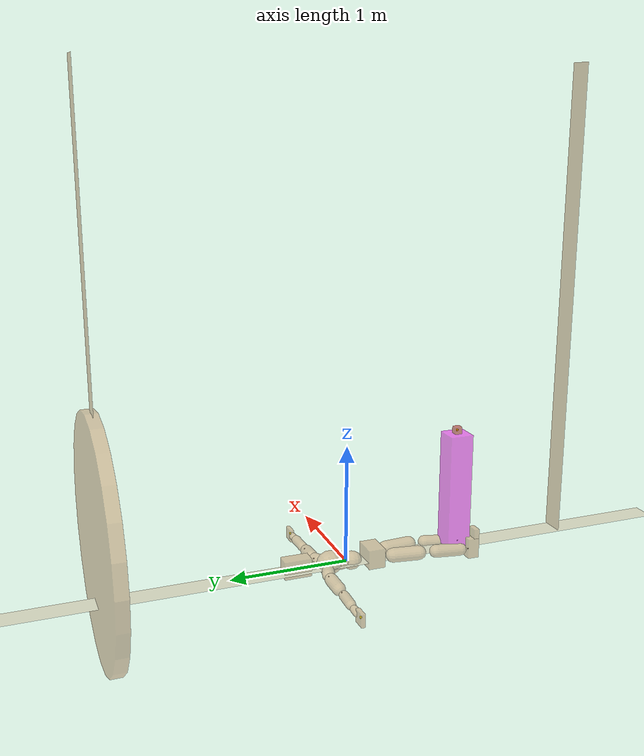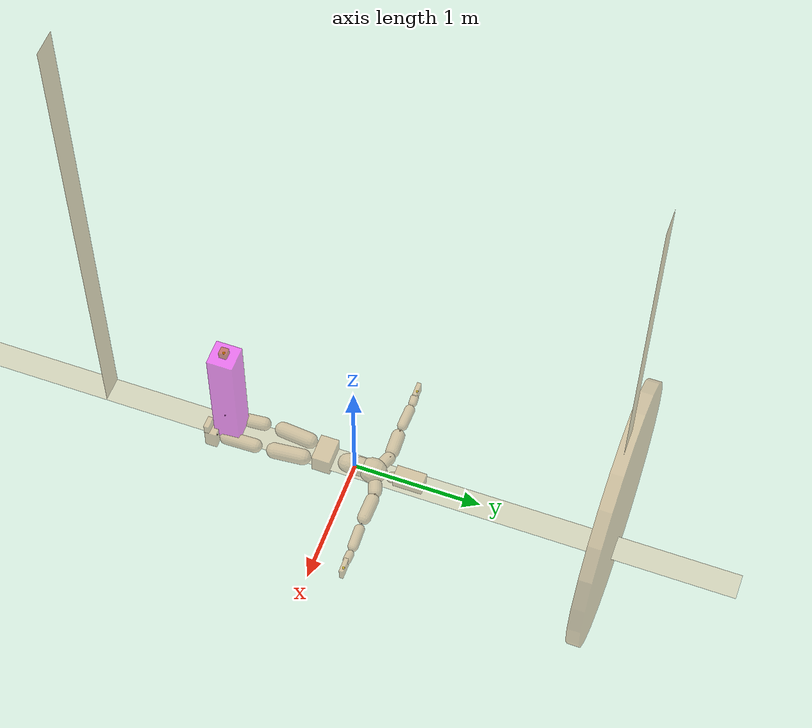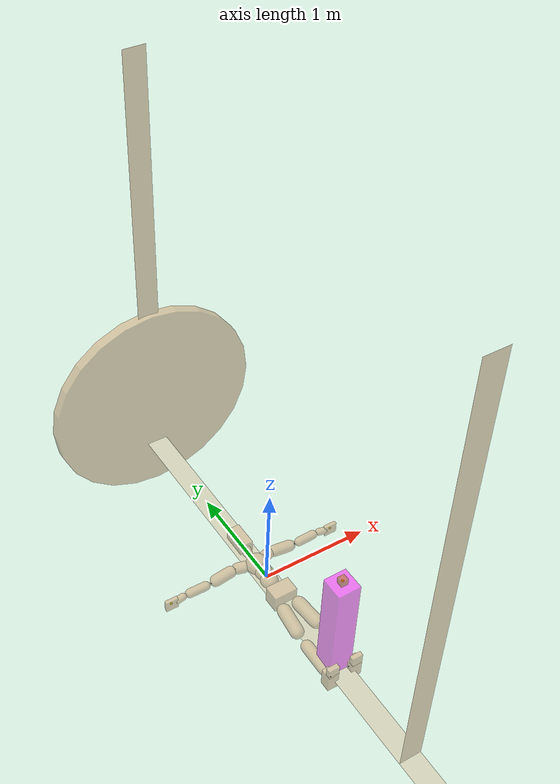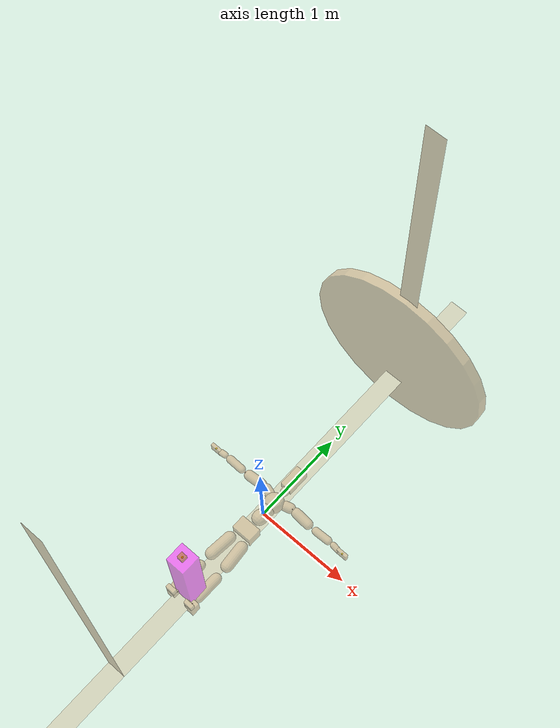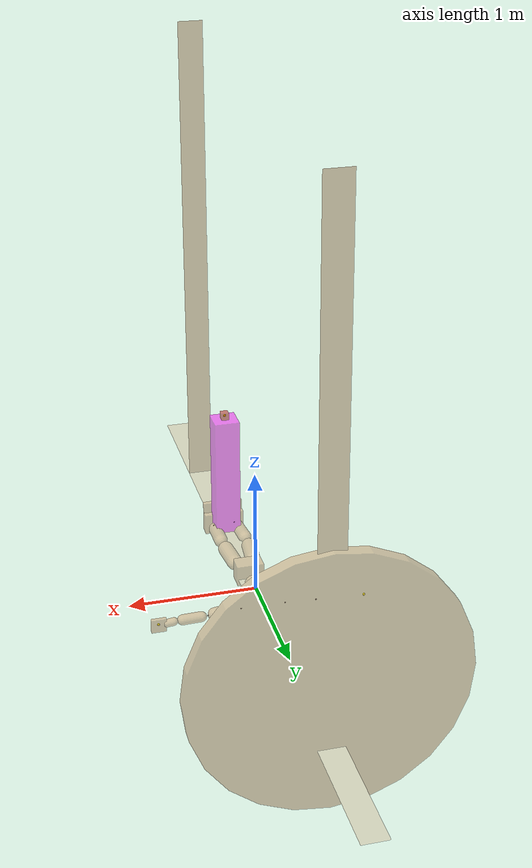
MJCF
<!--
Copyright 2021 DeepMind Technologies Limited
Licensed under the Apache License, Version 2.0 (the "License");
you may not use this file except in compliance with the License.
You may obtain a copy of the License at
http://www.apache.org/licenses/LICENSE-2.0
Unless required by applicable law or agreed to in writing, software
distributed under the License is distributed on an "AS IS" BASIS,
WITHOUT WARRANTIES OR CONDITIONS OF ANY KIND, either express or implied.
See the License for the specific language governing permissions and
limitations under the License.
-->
<!--timestep="0.00125"-->
<mujoco model="Humanoid">
  <option timestep="0.0005" integrator="implicitfast">
    <flag warmstart="disable"/>
  </option>
      <!-- geoms -->
  <default>
    <geom solimp="0.1 0.99 0.001" solref="0.005 1"/>
  </default>
  <include file="smpl_humanoid_soft_joint_limits.xml"/>
  <include file="baseball_pitch_scene.xml"/>
  <contact>
    <pair geom1="R_Hand_core" geom2="ball_core" friction="2 2 .01 .0002 .0002" solimp="0.9 0.99 0.0005" solref="0.001 1" margin=".06" gap=".06"/>
  </contact>
  <visual>
    <map force="0.1" zfar="30"/>
    <rgba haze="0.15 0.25 0.35 1"/>
      <!--offwidth="2560" offheight="1440"-->
    <global
      elevation="20"
      azimuth="10"
      />
    <headlight ambient=".8 .8 .8" specular=".8 .8 .8"/>
  </visual>
  <keyframe>
    <key name="tpose1" qpos="
        0.0 -.35  0.94 0.5  0.5  0.5  0.5  0.0  0.0  0.0
        0.0  0.0  0.0  0.0  0.0  0.0  0.0  0.0  0.0  0.0
        0.0  0.0  0.0  0.0  0.0  0.0  0.0  0.0  0.0  0.0
        0.0  0.0  0.0  0.0  0.0  0.0  0.0  0.0  0.0  0.0
        0.0  0.0  0.0  0.0  0.0  0.0  0.0  0.0  0.0  0.0
        0.0  0.0  0.0  0.0  0.0  0.0  0.0  0.0  0.0  0.0
        0.0  0.0  0.0  0.0  0.0  0.0  0.0  0.0  0.0  0.0
        0.0  0.0  0.0  0.0  0.0  0.0  0.0 -1.0  1.03 0.0
        0.0  0.0  0.0"/>
  </keyframe>
</mujoco>

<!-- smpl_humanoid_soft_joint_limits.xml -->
<mujoco model="humanoid">
  <compiler coordinate="local"/>
  <default class="main">
    <joint damping="10" armature="0.01" stiffness="0.0" margin=".3" limited="true" range="-120.0000 120.0000" solimplimit="0 0.95 1 0.5 1.5"/>
    <geom conaffinity="1" condim="3" contype="7" rgba="0.8 0.6 .4 .5" solimp="0.5 0.99 0.001" solref="0.005 1"/>
    <default class="wrist">
      <joint armature="0.01" stiffness="0" damping="0" />
      </default>
    <default class="thorax">
      <joint stiffness="2" damping="2" margin="1" range="-120.0000 120.0000" solimplimit="0 0.95 1 0.5 1.5"/>
    </default>
    <default class="shoulder">
      <joint stiffness="2" damping="2" margin="1" range="-120.0000 120.0000" solimplimit="0 0.95 1 0.5 1.5"/>
    </default>
    <default class="hand">
      <geom type="box" density="400" quat="1 0 0 0"/>
    </default>
  </default>
  <asset>
    <texture type="skybox" builtin="gradient" rgb1=".4 .5 .6" rgb2="0 0 0" width="100" height="100"/>
    <texture builtin="flat" height="1278" mark="cross" markrgb="1 1 1" name="texgeom" random="0.01" rgb1="0.8 0.6 0.4" rgb2="0.8 0.6 0.4" type="cube" width="127"/>
    <texture builtin="checker" height="100" name="texplane" rgb1="0 0 0" rgb2="0.8 0.8 0.8" type="2d" width="100"/>
    <material name="MatPlane" reflectance="0.5" shininess="1" specular="1" texrepeat="60 60" texture="texplane"/>
    <material name="geom" texture="texgeom" texuniform="true"/>
  </asset>
  <worldbody>
    <light cutoff="100" diffuse="1 1 1" dir="-0 0 -1.3" directional="true" exponent="1" pos="0 0 1.3" specular=".1 .1 .1"/>
    <body name="Pelvis" pos="-0.0018 -0.2233 0.0282">
      <freejoint name="Pelvis"/>
      <geom type="box" density="3165.830095" pos="-0.0000 -0.0121 -0.0055" size="0.1069 0.0722 0.083" quat="1.0000 0.0000 0.0000 0.0000" name="Pelvis"/>
      <body name="L_Hip" pos="0.0695 -0.0914 -0.0068">
        <joint name="L_Hip_x" type="hinge" pos="0 0 0" axis="1 0 0" user="250 2.5 1 500 10 2" armature="0.01" stiffness="0"/>
        <joint name="L_Hip_y" type="hinge" pos="0 0 0" axis="0 1 0" user="250 2.5 1 500 10 2" armature="0.01" stiffness="0"/>
        <joint name="L_Hip_z" type="hinge" pos="0 0 0" axis="0 0 1" user="250 2.5 1 500 10 2" armature="0.01" stiffness="0"/>
        <geom type="capsule" contype="1" conaffinity="1" density="2040.816327" fromto="0.0069 -0.0750 -0.0009 0.0274 -0.3002 -0.0036" size="0.0615" name="L_Hip"/>
        <body name="L_Knee" pos="0.0343 -0.3752 -0.0045">
          <joint name="L_Knee_x" type="hinge" pos="0 0 0" axis="1 0 0" user="250 2.5 1 500 10 2" armature="0.01" stiffness="0"/>
          <joint name="L_Knee_y" type="hinge" pos="0 0 0" axis="0 1 0" user="250 2.5 1 500 10 2" armature="0.01" stiffness="0"/>
          <joint name="L_Knee_z" type="hinge" pos="0 0 0" axis="0 0 1" user="250 2.5 1 500 10 2" armature="0.01" stiffness="0"/>
          <geom type="capsule" contype="1" conaffinity="1" density="1234.567901" fromto="-0.0027 -0.0796 -0.0087 -0.0109 -0.3184 -0.0350" size="0.0541" name="L_Knee"/>
          <body name="L_Ankle" pos="-0.0136 -0.398 -0.0437">
            <site name="L_Ankle" pos="0 0 0"/>
            <joint name="L_Ankle_x" type="hinge" pos="0 0 0" axis="1 0 0" user="150 2.5 1 500 10 2" armature="0.01" stiffness="0"/>
            <joint name="L_Ankle_y" type="hinge" pos="0 0 0" axis="0 1 0" user="150 2.5 1 500 10 2" armature="0.01" stiffness="0"/>
            <joint name="L_Ankle_z" type="hinge" pos="0 0 0" axis="0 0 1" user="150 2.5 1 500 10 2" armature="0.01" stiffness="0"/>
            <geom type="box" density="449.071569" pos="0.0233 -0.0239 0.0242" size="0.0483 0.0464 0.085" quat="1.0000 0.0000 0.0000 0.0000" name="L_Ankle"/>
            <body name="L_Toe" pos="0.0264 -0.0558 0.1193">
              <joint name="L_Toe_x" type="hinge" pos="0 0 0" axis="1 0 0" user="150 1 1 500 1 1" armature="0.01" stiffness="0"/>
              <joint name="L_Toe_y" type="hinge" pos="0 0 0" axis="0 1 0" user="150 1 1 500 1 1" armature="0.01" stiffness="0"/>
              <joint name="L_Toe_z" type="hinge" pos="0 0 0" axis="0 0 1" user="150 1 1 500 1 1" armature="0.01" stiffness="0"/>
              <geom type="box" density="423.206892" pos="-0.0030 0.0055 0.0248" size="0.0478 0.02 0.0496" quat="1.0000 0.0000 0.0000 0.0000" name="L_Toe"/>
            </body>
          </body>
        </body>
      </body>
      <body name="R_Hip" pos="-0.0677 -0.0905 -0.0043">
        <joint name="R_Hip_x" type="hinge" pos="0 0 0" axis="1 0 0" user="250 2.5 1 500 10 2" armature="0.01" stiffness="0"/>
        <joint name="R_Hip_y" type="hinge" pos="0 0 0" axis="0 1 0" user="250 2.5 1 500 10 2" armature="0.01" stiffness="0"/>
        <joint name="R_Hip_z" type="hinge" pos="0 0 0" axis="0 0 1" user="250 2.5 1 500 10 2" armature="0.01" stiffness="0"/>
        <geom type="capsule" contype="1" conaffinity="1" density="2040.816327" fromto="-0.0077 -0.0765 -0.0018 -0.0306 -0.3061 -0.0071" size="0.0606" name="R_Hip"/>
        <body name="R_Knee" pos="-0.0383 -0.3826 -0.0089">
          <joint name="R_Knee_x" type="hinge" pos="0 0 0" axis="1 0 0" user="250 2.5 1 500 10 2" armature="0.01" stiffness="0"/>
          <joint name="R_Knee_y" type="hinge" pos="0 0 0" axis="0 1 0" user="250 2.5 1 500 10 2" armature="0.01" stiffness="0"/>
          <joint name="R_Knee_z" type="hinge" pos="0 0 0" axis="0 0 1" user="250 2.5 1 500 10 2" armature="0.01" stiffness="0"/>
          <geom type="capsule" contype="1" conaffinity="1" density="1234.567901" fromto="0.0032 -0.0797 -0.0085 0.0126 -0.3187 -0.0338" size="0.0541" name="R_Knee"/>
          <body name="R_Ankle" pos="0.0158 -0.3984 -0.0423">
            <site name="R_Ankle" pos="0 0 0"/>
            <joint name="R_Ankle_x" type="hinge" pos="0 0 0" axis="1 0 0" user="150 1 1 500 10 2" armature="0.01" stiffness="0"/>
            <joint name="R_Ankle_y" type="hinge" pos="0 0 0" axis="0 1 0" user="150 1 1 500 10 2" armature="0.01" stiffness="0"/>
            <joint name="R_Ankle_z" type="hinge" pos="0 0 0" axis="0 0 1" user="150 1 1 500 10 2" armature="0.01" stiffness="0"/>
            <geom type="box" density="434.700981" pos="-0.0212 -0.0174 0.0256" size="0.0483 0.0478 0.0865" quat="1.0000 0.0000 0.0000 0.0000" name="R_Ankle"/>
            <body name="R_Toe" pos="-0.0254 -0.0481 0.1233">
              <joint name="R_Toe_x" type="hinge" pos="0 0 0" axis="1 0 0" user="150 1 1 500 1 1" armature="0.01" stiffness="0"/>
              <joint name="R_Toe_y" type="hinge" pos="0 0 0" axis="0 1 0" user="150 1 1 500 1 1" armature="0.01" stiffness="0"/>
              <joint name="R_Toe_z" type="hinge" pos="0 0 0" axis="0 0 1" user="150 1 1 500 1 1" armature="0.01" stiffness="0"/>
              <geom type="box" density="407.384095" pos="0.0042 0.0045 0.0227" size="0.0479 0.0216 0.0493" quat="1.0000 0.0000 0.0000 0.0000" name="R_Toe"/>
            </body>
          </body>
        </body>
      </body>
      <body name="Torso" pos="-0.0025 0.109 -0.0267">
        <joint name="Torso_x" type="hinge" pos="0 0 0" axis="1 0 0" user="500 5 1 500 10 2" armature="0.01" stiffness="0"/>
        <joint name="Torso_y" type="hinge" pos="0 0 0" axis="0 1 0" user="500 5 1 500 10 2" armature="0.01" stiffness="0"/>
        <joint name="Torso_z" type="hinge" pos="0 0 0" axis="0 0 1" user="500 5 1 500 10 2" armature="0.01" stiffness="0"/>
        <geom type="capsule" contype="1" conaffinity="1" density="2040.816327" fromto="0.0025 0.0608 0.0005 0.0030 0.0743 0.0006" size="0.0769" name="Torso"/>
        <body name="Spine" pos="0.0055 0.1352 0.0011">
          <joint name="Spine_x" type="hinge" pos="0 0 0" axis="1 0 0" user="500 5 1 500 10 2" armature="0.01" stiffness="0"/>
          <joint name="Spine_y" type="hinge" pos="0 0 0" axis="0 1 0" user="500 5 1 500 10 2" armature="0.01" stiffness="0"/>
          <joint name="Spine_z" type="hinge" pos="0 0 0" axis="0 0 1" user="500 5 1 500 10 2" armature="0.01" stiffness="0"/>
          <geom type="capsule" contype="1" conaffinity="1" density="2040.816327" fromto="0.0007 0.0238 0.0114 0.0008 0.0291 0.0140" size="0.0755" name="Spine"/>
          <body name="Chest" pos="0.0015 0.0529 0.0254">
            <joint name="Chest_x" type="hinge" pos="0 0 0" axis="1 0 0" user="500 5 1 500 10 2" armature="0.01" stiffness="0"/>
            <joint name="Chest_y" type="hinge" pos="0 0 0" axis="0 1 0" user="500 5 1 500 10 2" armature="0.01" stiffness="0"/>
            <joint name="Chest_z" type="hinge" pos="0 0 0" axis="0 0 1" user="500 5 1 500 10 2" armature="0.01" stiffness="0"/>
            <geom type="capsule" contype="1" conaffinity="1" density="2040.816327" fromto="-0.0009 0.0682 -0.0173 -0.0010 0.0833 -0.0212" size="0.1002" name="Chest"/>
            <body name="Neck" pos="-0.0028 0.2139 -0.0429">
              <joint name="Neck_x" type="hinge" pos="0 0 0" axis="1 0 0" user="150 1 1 250 50 4" armature="0.01" stiffness="0"/>
              <joint name="Neck_y" type="hinge" pos="0 0 0" axis="0 1 0" user="150 1 1 250 50 4" armature="0.01" stiffness="0"/>
              <joint name="Neck_z" type="hinge" pos="0 0 0" axis="0 0 1" user="150 1 1 250 50 4" armature="0.01" stiffness="0"/>
              <geom type="capsule" contype="1" conaffinity="1" density="1000" fromto="0.0010 0.0130 0.0103 0.0041 0.0520 0.0411" size="0.0436" name="Neck"/>
              <body name="Head" pos="0.0052 0.065 0.0513">
                <joint name="Head_x" type="hinge" pos="0 0 0" axis="1 0 0" user="150 1 1 250 50 4" armature="0.01" stiffness="0"/>
                <joint name="Head_y" type="hinge" pos="0 0 0" axis="0 1 0" user="150 1 1 250 50 4" armature="0.01" stiffness="0"/>
                <joint name="Head_z" type="hinge" pos="0 0 0" axis="0 0 1" user="150 1 1 250 50 4" armature="0.01" stiffness="0"/>
                <geom type="box" density="1018.069894" pos="-0.0042 0.0876 -0.0116" size="0.0606 0.1154 0.076" quat="1.0000 0.0000 0.0000 0.0000" name="Head"/>
              </body>
            </body>
            <body name="L_Thorax" pos="0.0788 0.1217 -0.0341">
              <joint class="thorax" name="L_Thorax_x" type="hinge" pos="0 0 0" axis="1 0 0" user="200 2 1 500 50 4" armature="0.01" range="-180.0000 180.0000"/>
              <joint class="thorax" name="L_Thorax_y" type="hinge" pos="0 0 0" axis="0 1 0" user="200 2 1 500 50 4" armature="0.01" range="-180.0000 180.0000"/>
              <joint class="thorax" name="L_Thorax_z" type="hinge" pos="0 0 0" axis="0 0 1" user="200 2 1 500 50 4" armature="0.01" range="-180.0000 180.0000"/>
              <geom type="capsule" contype="1" conaffinity="1" density="1000" fromto="0.0182 0.0061 -0.0018 0.0728 0.0244 -0.0071" size="0.0521" name="L_Thorax"/>
              <body name="L_Shoulder" pos="0.091 0.0305 -0.0089">
                <site name="L_Shoulder" pos="0 0 0"/>
                <joint class="shoulder" name="L_Shoulder_x" type="hinge" pos="0 0 0" axis="1 0 0" user="200 2 1 500 50 4" armature="0.01"/>
                <joint class="shoulder" name="L_Shoulder_y" type="hinge" pos="0 0 0" axis="0 1 0" user="200 2 1 500 50 4" armature="0.01"/>
                <joint class="shoulder" name="L_Shoulder_z" type="hinge" pos="0 0 0" axis="0 0 1" user="200 2 1 500 50 4" armature="0.01"/>
                <geom type="capsule" contype="1" conaffinity="1" density="1000" fromto="0.0519 -0.0026 -0.0055 0.2077 -0.0102 -0.0220" size="0.0517" name="L_Shoulder"/>
                <body name="L_Elbow" pos="0.2596 -0.0128 -0.0275">
                  <site name="L_Elbow" pos="0 0 0"/>
                  <joint name="L_Elbow_x" type="hinge" pos="0 0 0" axis="1 0 0" user="150 1 1 150 10 2" armature="0.01" range="-720.0000 720.0000" stiffness="0"/>
                  <joint name="L_Elbow_y" type="hinge" pos="0 0 0" axis="0 1 0" user="150 1 1 150 10 2" armature="0.01" range="-720.0000 720.0000" stiffness="0"/>
                  <joint name="L_Elbow_z" type="hinge" pos="0 0 0" axis="0 0 1" user="150 1 1 150 10 2" armature="0.01" range="-720.0000 720.0000" stiffness="0"/>
                  <geom type="capsule" contype="1" conaffinity="1" density="1000" fromto="0.0498 0.0018 -0.0002 0.1994 0.0072 -0.0009" size="0.0405" name="L_Elbow"/>
                  <body name="L_Wrist" pos="0.2492 0.009 -0.0012">
                    <joint name="L_Wrist_x" type="hinge" pos="0 0 0" axis="1 0 0" user="100 1 1 150 1 1" armature="0.01" stiffness="0"/>
                    <joint name="L_Wrist_y" type="hinge" pos="0 0 0" axis="0 1 0" user="100 1 1 150 1 1" armature="0.01" stiffness="0"/>
                    <joint name="L_Wrist_z" type="hinge" pos="0 0 0" axis="0 0 1" user="100 1 1 150 1 1" armature="0.01" stiffness="0"/>
                    <geom type="capsule" contype="1" conaffinity="1" density="1000" fromto="0.0168 -0.0016 -0.0030 0.0672 -0.0065 -0.0120" size="0.0318" name="L_Wrist"/>
                    <body name="L_Hand" pos="0.084 -0.0082 -0.0149">
                      <site name="L_Hand" pos=".05 0 0" rgba="1 1 0 .5" size=".01"/>
                      <joint name="L_Hand_x" type="hinge" pos="0 0 0" axis="1 0 0" user="50 1 1 150 1 1" armature="0.01" stiffness="0"/>
                      <joint name="L_Hand_y" type="hinge" pos="0 0 0" axis="0 1 0" user="50 1 1 150 1 1" armature="0.01" stiffness="0"/>
                      <joint name="L_Hand_z" type="hinge" pos="0 0 0" axis="0 0 1" user="50 1 1 150 1 1" armature="0.01" stiffness="0"/>
                      <geom class="hand" pos="0.0493 0.0010 -0.0058" size="0.0585 0.0158 0.0538" name="L_Hand"/>
                      <body name="L_Hand_core" pos=".05 0 0">
                        <geom type="sphere" name="L_Hand_core" pos="0 0 0" size=".01" density="1" rgba="1 1 0 1"/>
                      </body>
                    </body>
                  </body>
                </body>
              </body>
            </body>
            <body name="R_Thorax" pos="-0.0818 0.1188 -0.0386">
              <joint class="thorax" name="R_Thorax_x" type="hinge" pos="0 0 0" axis="1 0 0" user="200 2 1 150 10 2" armature="0.01"/>
              <joint class="thorax" name="R_Thorax_y" type="hinge" pos="0 0 0" axis="0 1 0" user="200 2 1 150 10 2" armature="0.01"/>
              <joint class="thorax" name="R_Thorax_z" type="hinge" pos="0 0 0" axis="0 0 1" user="200 2 1 150 10 2" armature="0.01"/>
              <geom type="capsule" contype="1" conaffinity="1" density="1000" fromto="-0.0192 0.0065 -0.0018 -0.0768 0.0260 -0.0073" size="0.0511" name="R_Thorax"/>
              <body name="R_Shoulder" pos="-0.096 0.0326 -0.0091">
                <site name="R_Shoulder" pos="0 0 0"/>
                <joint class="shoulder" name="R_Shoulder_x" type="hinge" pos="0 0 0" axis="1 0 0" user="200 2 1 250 10 2" armature="0.01"/>
                <joint class="shoulder" name="R_Shoulder_y" type="hinge" pos="0 0 0" axis="0 1 0" user="200 2 1 250 10 2" armature="0.01"/>
                <joint class="shoulder" name="R_Shoulder_z" type="hinge" pos="0 0 0" axis="0 0 1" user="200 2 1 250 10 2" armature="0.01"/>
                <geom type="capsule" contype="1" conaffinity="1" density="1000" fromto="-0.0507 -0.0027 -0.0043 -0.2030 -0.0107 -0.0171" size="0.0531" name="R_Shoulder"/>
                <body name="R_Elbow" pos="-0.2537 -0.0133 -0.0214">
                  <site name="R_Elbow" pos="0 0 0"/>
                  <joint name="R_Elbow_x" type="hinge" pos="0 0 0" axis="1 0 0" user="150 1 1 150 10 2" armature="0.01" range="-720.0000 720.0000" stiffness="0"/>
                  <joint name="R_Elbow_y" type="hinge" pos="0 0 0" axis="0 1 0" user="150 1 1 150 10 2" armature="0.01" range="-720.0000 720.0000" stiffness="0"/>
                  <joint name="R_Elbow_z" type="hinge" pos="0 0 0" axis="0 0 1" user="150 1 1 150 10 2" armature="0.01" range="-720.0000 720.0000" stiffness="0"/>
                  <geom type="capsule" contype="1" conaffinity="1" density="1000" fromto="-0.0511 0.0016 -0.0011 -0.2042 0.0062 -0.0044" size="0.0408" name="R_Elbow"/>
                  <body name="R_Wrist" pos="-0.2553 0.0078 -0.0056">
                    <joint class="wrist" name="R_Wrist_x" type="hinge" pos="0 0 0" axis="1 0 0" user="100 1 1 150 1 1"/>
                    <joint class="wrist" name="R_Wrist_y" type="hinge" pos="0 0 0" axis="0 1 0" user="100 1 1 150 1 1"/>
                    <joint class="wrist" name="R_Wrist_z" type="hinge" pos="0 0 0" axis="0 0 1" user="100 1 1 150 1 1"/>
                    <geom type="capsule" contype="1" conaffinity="1" density="1000" fromto="-0.0169 -0.0012 -0.0021 -0.0677 -0.0049 -0.0083" size="0.0326" name="R_Wrist"/>
                    <body name="R_Hand" pos="-0.0846 -0.0061 -0.0103">
                      <site name="R_Hand" pos="-.05 0 0"/>
                      <site name="R_Hand_below" pos="-.05 -1 0" size=".05" rgba="1 1 0 0"/>
                      <joint name="R_Hand_x" type="hinge" pos="0 0 0" axis="1 0 0" user="50 1 1 150 1 1" armature="0.01" stiffness="0"/>
                      <joint name="R_Hand_y" type="hinge" pos="0 0 0" axis="0 1 0" user="50 1 1 150 1 1" armature="0.01" stiffness="0"/>
                      <joint name="R_Hand_z" type="hinge" pos="0 0 0" axis="0 0 1" user="50 1 1 150 1 1" armature="0.01" stiffness="0"/>
                      <geom class="hand" name="R_Hand" pos="-0.0462 -0.0009 -0.0079" size="0.0569 0.0164 0.0546" />
                      <body name="R_Hand_core" pos="-.05 0 0">
                        <geom type="sphere" name="R_Hand_core" pos="0 0 0" size=".01" density="1" rgba="1 1 0 1"/>
                      </body>
                    </body>
                  </body>
                </body>
              </body>
            </body>
          </body>
        </body>
      </body>
    </body>
  </worldbody>
  <actuator>
    <motor name="L_Hip_x" joint="L_Hip_x" gear="1"/>
    <motor name="L_Hip_y" joint="L_Hip_y" gear="1"/>
    <motor name="L_Hip_z" joint="L_Hip_z" gear="1"/>
    <motor name="L_Knee_x" joint="L_Knee_x" gear="1"/>
    <motor name="L_Knee_y" joint="L_Knee_y" gear="1"/>
    <motor name="L_Knee_z" joint="L_Knee_z" gear="1"/>
    <motor name="L_Ankle_x" joint="L_Ankle_x" gear="1"/>
    <motor name="L_Ankle_y" joint="L_Ankle_y" gear="1"/>
    <motor name="L_Ankle_z" joint="L_Ankle_z" gear="1"/>
    <motor name="L_Toe_x" joint="L_Toe_x" gear="1"/>
    <motor name="L_Toe_y" joint="L_Toe_y" gear="1"/>
    <motor name="L_Toe_z" joint="L_Toe_z" gear="1"/>
    <motor name="R_Hip_x" joint="R_Hip_x" gear="1"/>
    <motor name="R_Hip_y" joint="R_Hip_y" gear="1"/>
    <motor name="R_Hip_z" joint="R_Hip_z" gear="1"/>
    <motor name="R_Knee_x" joint="R_Knee_x" gear="1"/>
    <motor name="R_Knee_y" joint="R_Knee_y" gear="1"/>
    <motor name="R_Knee_z" joint="R_Knee_z" gear="1"/>
    <motor name="R_Ankle_x" joint="R_Ankle_x" gear="1"/>
    <motor name="R_Ankle_y" joint="R_Ankle_y" gear="1"/>
    <motor name="R_Ankle_z" joint="R_Ankle_z" gear="1"/>
    <motor name="R_Toe_x" joint="R_Toe_x" gear="1"/>
    <motor name="R_Toe_y" joint="R_Toe_y" gear="1"/>
    <motor name="R_Toe_z" joint="R_Toe_z" gear="1"/>
    <motor name="Torso_x" joint="Torso_x" gear="1"/>
    <motor name="Torso_y" joint="Torso_y" gear="1"/>
    <motor name="Torso_z" joint="Torso_z" gear="1"/>
    <motor name="Spine_x" joint="Spine_x" gear="1"/>
    <motor name="Spine_y" joint="Spine_y" gear="1"/>
    <motor name="Spine_z" joint="Spine_z" gear="1"/>
    <motor name="Chest_x" joint="Chest_x" gear="1"/>
    <motor name="Chest_y" joint="Chest_y" gear="1"/>
    <motor name="Chest_z" joint="Chest_z" gear="1"/>
    <motor name="Neck_x" joint="Neck_x" gear="1"/>
    <motor name="Neck_y" joint="Neck_y" gear="1"/>
    <motor name="Neck_z" joint="Neck_z" gear="1"/>
    <motor name="Head_x" joint="Head_x" gear="1"/>
    <motor name="Head_y" joint="Head_y" gear="1"/>
    <motor name="Head_z" joint="Head_z" gear="1"/>
    <motor name="L_Thorax_x" joint="L_Thorax_x" gear="1"/>
    <motor name="L_Thorax_y" joint="L_Thorax_y" gear="1"/>
    <motor name="L_Thorax_z" joint="L_Thorax_z" gear="1"/>
    <motor name="L_Shoulder_x" joint="L_Shoulder_x" gear="1"/>
    <motor name="L_Shoulder_y" joint="L_Shoulder_y" gear="1"/>
    <motor name="L_Shoulder_z" joint="L_Shoulder_z" gear="1"/>
    <motor name="L_Elbow_x" joint="L_Elbow_x" gear="1"/>
    <motor name="L_Elbow_y" joint="L_Elbow_y" gear="1"/>
    <motor name="L_Elbow_z" joint="L_Elbow_z" gear="1"/>
    <motor name="L_Wrist_x" joint="L_Wrist_x" gear="1"/>
    <motor name="L_Wrist_y" joint="L_Wrist_y" gear="1"/>
    <motor name="L_Wrist_z" joint="L_Wrist_z" gear="1"/>
    <motor name="L_Hand_x" joint="L_Hand_x" gear="1"/>
    <motor name="L_Hand_y" joint="L_Hand_y" gear="1"/>
    <motor name="L_Hand_z" joint="L_Hand_z" gear="1"/>
    <motor name="R_Thorax_x" joint="R_Thorax_x" gear="1"/>
    <motor name="R_Thorax_y" joint="R_Thorax_y" gear="1"/>
    <motor name="R_Thorax_z" joint="R_Thorax_z" gear="1"/>
    <motor name="R_Shoulder_x" joint="R_Shoulder_x" gear="1"/>
    <motor name="R_Shoulder_y" joint="R_Shoulder_y" gear="1"/>
    <motor name="R_Shoulder_z" joint="R_Shoulder_z" gear="1"/>
    <motor name="R_Elbow_x" joint="R_Elbow_x" gear="1"/>
    <motor name="R_Elbow_y" joint="R_Elbow_y" gear="1"/>
    <motor name="R_Elbow_z" joint="R_Elbow_z" gear="1"/>
    <motor name="R_Wrist_x" joint="R_Wrist_x" gear="1"/>
    <motor name="R_Wrist_y" joint="R_Wrist_y" gear="1"/>
    <motor name="R_Wrist_z" joint="R_Wrist_z" gear="1"/>
    <motor name="R_Hand_x" joint="R_Hand_x" gear="1"/>
    <motor name="R_Hand_y" joint="R_Hand_y" gear="1"/>
    <motor name="R_Hand_z" joint="R_Hand_z" gear="1"/>
    <adhesion name="R_Hand_adh" body="R_Hand_core" gain="300" ctrlrange="0 1"/>
    <adhesion name="L_Hand_adh" body="L_Hand_core" gain="300" ctrlrange="0 1"/>
  </actuator>
  <contact>
    <exclude body1="Torso" body2="Chest"/>
    <exclude body1="Head" body2="Chest"/>
    <exclude body1="R_Knee" body2="R_Toe"/>
    <exclude body1="R_Knee" body2="L_Ankle"/>
    <exclude body1="R_Knee" body2="L_Toe"/>
    <exclude body1="L_Knee" body2="L_Toe"/>
    <exclude body1="L_Knee" body2="R_Ankle"/>
    <exclude body1="L_Knee" body2="R_Toe"/>
    <exclude body1="L_Shoulder" body2="Chest"/>
    <exclude body1="R_Shoulder" body2="Chest"/>
  </contact>
  <sensor/>
  <size njmax="700" nconmax="700"/>
</mujoco>

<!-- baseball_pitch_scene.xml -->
<mujoco model="Baseball pitch">
  <visual>
    <map force="0.1" zfar="30"/>
    <rgba haze="0.15 0.25 0.35 1"/>
      <!--offwidth="2560" offheight="1440"-->
    <global
      elevation="20"
      azimuth="10"
      />
    <headlight ambient=".8 .8 .8" specular=".8 .8 .8"/>
  </visual>

  <statistic center="0 0 0.7"/>
  <default>
    <geom solimp="0.5 0.99 0.001" solref="0.01 1"/>
  </default>

  <asset>
    <texture type="skybox" builtin="gradient" rgb1=".3 .5 .7" rgb2="0 0 0"
      width="32" height="512"/>
    <texture name="grid" type="2d" builtin="checker" width="512" height="512"
      rgb1=".1 .2 .3" rgb2=".2 .3 .4"/>
    <material name="grid" texture="grid" texrepeat="1 1" texuniform="true"
      reflectance=".2"/>
    <texture name="obj" type="cube" builtin="flat" mark="cross" width="128"
      height="128" rgb1="0.8 0.6 0.4" rgb2="0.8 0.6 0.4" markrgb="1 1 1"
      random="0.01"/>
    <material name="obj" texture="obj" texuniform="true" rgba="0.8 0.6 .4 1"/>
  </asset>

  <worldbody>
    <geom name="floor" size=".1 3 .05" type="plane" material="grid"
      condim="3"/>
    <body name="wall" pos="0 0 0" xyaxes="1 0 0 0 0 1">
      <geom name="rwall2" pos = "0 2 -2" size=".1 2 .05" type="plane"
        material="grid" condim="3"/>
    </body>
    <body name="lwall" pos="0 0 0" xyaxes="-1 0 0 0 0 1">
      <geom name="lwall2" pos = "0 2 -2" size=".1 2 .05" type="plane"
        material="grid" condim="3"/>
    </body>
    <body name="ceil" pos="0 0 0" xyaxes="-1 0 0 0 1 0">
      <geom name="ceil2" pos = "0 0 -3" size=".1 2 .05" type="plane"
        material="grid" condim="3"/>
    </body>
    <camera name="forward" pos="9 0 0" xyaxes="0 1 0 0 0 1"/>

    <geom name="ballstand" size=".1 .1 .5" pos="0 -1.0 .5" type="box"
      material="obj" condim="3" rgba = "1 0 1 .5"/>

    <body name="ball" pos="0 -1.0 1.03">
      <freejoint name="ball_joint" align="true"/>
      <geom name="ball" size=".03 .03 .03" pos="0 0 0" type="box"
        material="obj" condim="3" friction="1 0.005 0.0001"
        rgba=".7 0 0 .5" density="800"/>
      <site name="ball_base" pos="0 0 -.03" size=".01" rgba=".7 .7 .2 0"/>
      <site name="ball" pos="0 0 0" rgba=".7 .7 .2 .0"/>
      <site name="ball_top" pos="0 0 0.03" rgba=".7 .7 .2 0" size=".02"/>
      <body name="ball_core" pos="0 0 0">
        <geom name="ball_core" size=".01" pos="0 0 0" type="sphere"
          material="obj" condim="3" density="1" rgba="1 1 0 1"/>
      </body>
    </body>

    <body name="target" pos="0 2 .5">
      <geom name="target" type="cylinder" pos="0 0 0" size="1 .05"
        zaxis="0 1 0"/>
      <site name="bullseye" pos="0 -.05 0" size="0.06" rgba="1 1 1 0"/>
    </body>

  </worldbody>
</mujoco>
